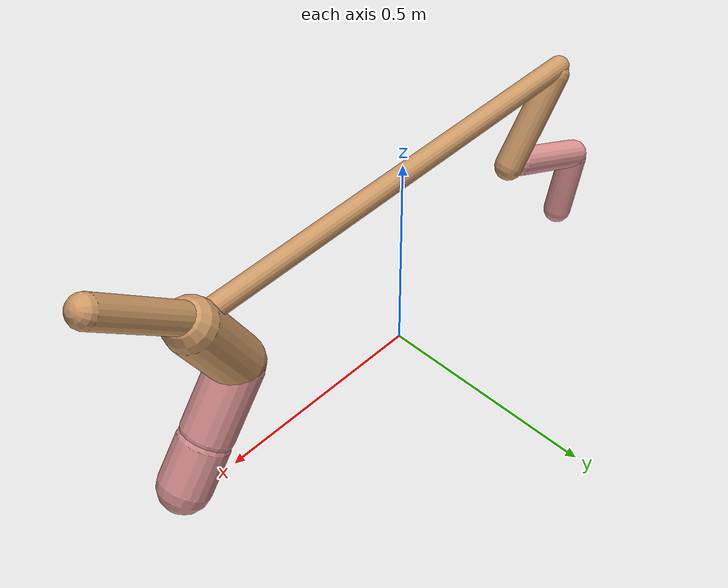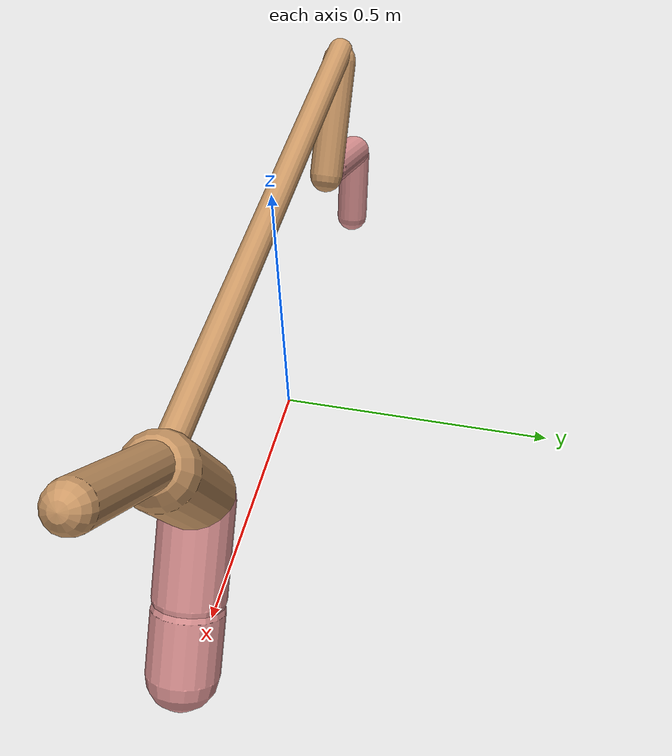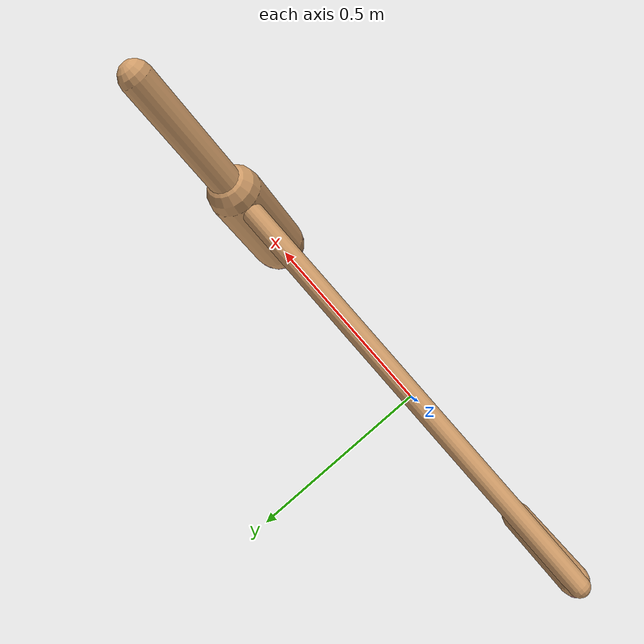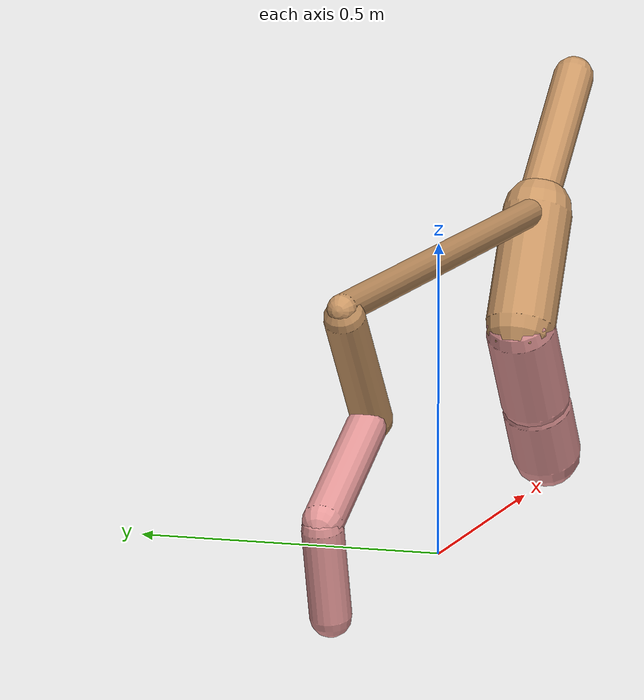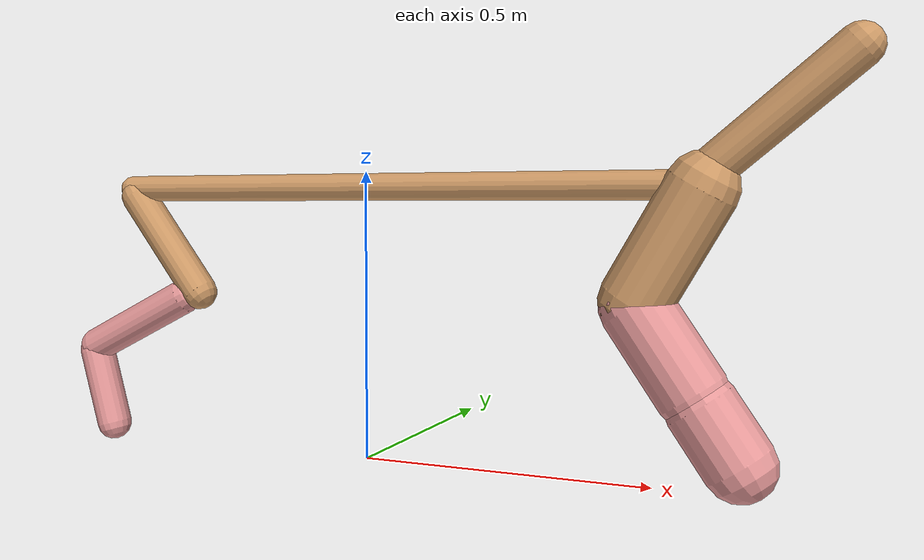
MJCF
<mujoco model="cheetah">
  <compiler angle="radian" coordinate="local" inertiafromgeom="true" settotalmass="14" />
  <default>
    <joint armature=".1" damping=".01" limited="true" solimplimit="0 .8 .03" solreflimit=".02 1" stiffness="8" />
    <geom conaffinity="0" condim="3" contype="1" friction="0.8 .1 .1" rgba="0.8 0.6 .4 1" solimp="0.0 0.8 0.01" solref="0.02 1" />
    <motor ctrllimited="true" ctrlrange="-1 1" />
  </default>
  <size nstack="300000" nuser_geom="1" />
  <option gravity="0 0 -9.81" timestep="0.01" />
  <worldbody>
    <body name="torso" pos="0.0 0.0 0.474550054275898">
      <joint armature="0" axis="1 0 0" damping="0" limited="false" name="ignorex" pos="0 0 0" stiffness="0" type="slide" />
      <joint armature="0" axis="0 0 1" damping="0" limited="false" name="ignorez" pos="0 0 0" stiffness="0" type="slide" />
      <joint armature="0" axis="0 1 0" damping="0" limited="false" name="ignorey" pos="0 0 0" stiffness="0" type="hinge" />
      <geom fromto="-0.5 0.0 0.0 0.5739580827276869 0.0 0.0" name="torso" size="0.023595085220551083" type="capsule" />
      <geom axisangle="0 1 0 .87" name="head" pos="0.6739580827276869 0.0 0.1" size="0.03445574848661391 0.15" type="capsule" />

      <body name="bthigh" pos="-.5 0 0">
        <joint axis="0 1 0" damping="6" name="bthigh" pos="0 0 0" range="-.52 1.05" stiffness="240" type="hinge" />
        <geom axisangle="0 1 0 -3.8" name="bthigh" pos="0.08044850373740337 0.0 -0.10458305485862437" size="0.0322 0.11293316188917235" type="capsule" />
        <body name="bshin" pos="0.12089700747480674 0.0 -0.19916610971724874">
          <joint axis="0 1 0" damping="4.5" name="bshin" pos="0 0 0" range="-.785 .785" stiffness="180" type="hinge" />
          <geom axisangle="0 1 0 -2.03" name="bshin" pos="-0.11032953248029317 0.0 -0.05516476624014659" rgba="0.9 0.6 0.6 1" size="0.0322 0.11682740885086795" type="capsule" />
          <body name="bfoot" pos="-0.22065906496058635 0.0 -0.11032953248029317">
            <joint axis="0 1 0" damping="3" name="bfoot" pos="0 0 0" range="-.4 .785" stiffness="120" type="hinge" />
            <geom axisangle="0 1 0 -.27" name="bfoot" pos="0.023857728975656925 0.0 -0.07713999035462406" rgba="0.9 0.6 0.6 1" size="0.0322 0.07321184287987725" type="capsule" />
            <inertial mass="10" />
          </body>
        </body>
      </body>
      <body name="fthigh" pos="0.5739580827276869 0.0 0.0">
        <joint axis="0 1 0" damping="4.5" name="fthigh" pos="0 0 0" range="-1.5 0.8" stiffness="180" type="hinge" />
        <geom axisangle="0 1 0 .52" name="fthigh" pos="-0.054196136524691504 0.0 -0.09290766261375687" size="0.05853561594136522 0.10163510169319503" type="capsule" />
        <body name="fshin" pos="-0.10839227304938301 0.0 -0.18581532522751373">
          <joint axis="0 1 0" damping="3" name="fshin" pos="0 0 0" range="-1.2 1.1" stiffness="120" type="hinge" />
          <geom axisangle="0 1 0 -.6" name="fshin" pos="0.05036414828437698 0.0 -0.06973497454759889" rgba="0.9 0.6 0.6 1" size="0.05853561594136522 0.08100241187577949" type="capsule" />
          <body name="ffoot" pos="0.10072829656875396 0.0 -0.13946994909519778">
            <joint axis="0 1 0" damping="1.5" name="ffoot" pos="0 0 0" range="-3.1 -0.3" stiffness="60" type="hinge" />
            <geom axisangle="0 1 0 -.6" name="ffoot" pos="0.03607325954727332 0.0 -0.056113959295758506" rgba="0.9 0.6 0.6 1" size="0.05853561594136522 0.05349215878589213" type="capsule" />
            <inertial mass="10" />
          </body>
        </body>
      </body>
    </body>
  </worldbody>
  <actuator>
    <motor gear="120" joint="bthigh" name="bthigh" />
    <motor gear="90" joint="bshin" name="bshin" />
    <motor gear="60" joint="bfoot" name="bfoot" />
    <motor gear="120" joint="fthigh" name="fthigh" />
    <motor gear="60" joint="fshin" name="fshin" />
    <motor gear="30" joint="ffoot" name="ffoot" />
  </actuator>
</mujoco>
